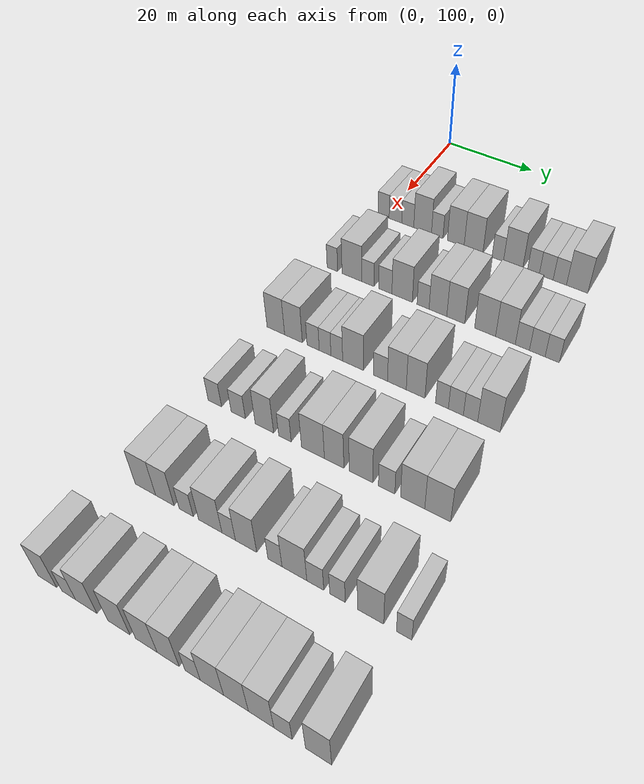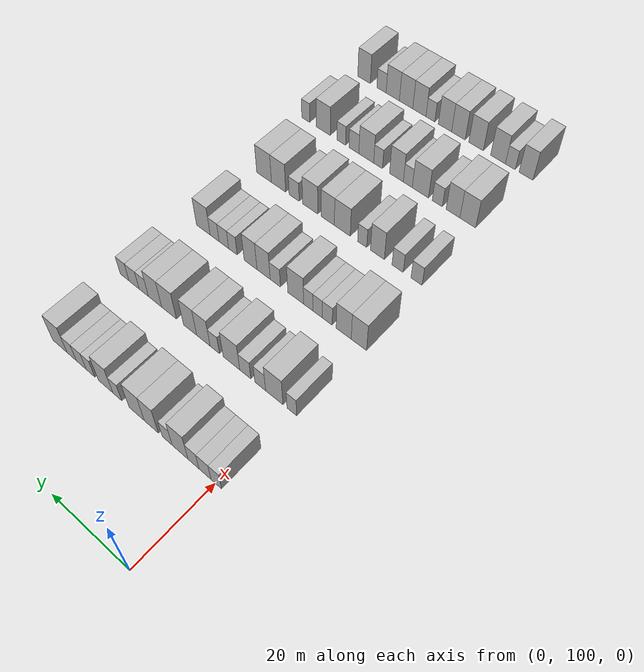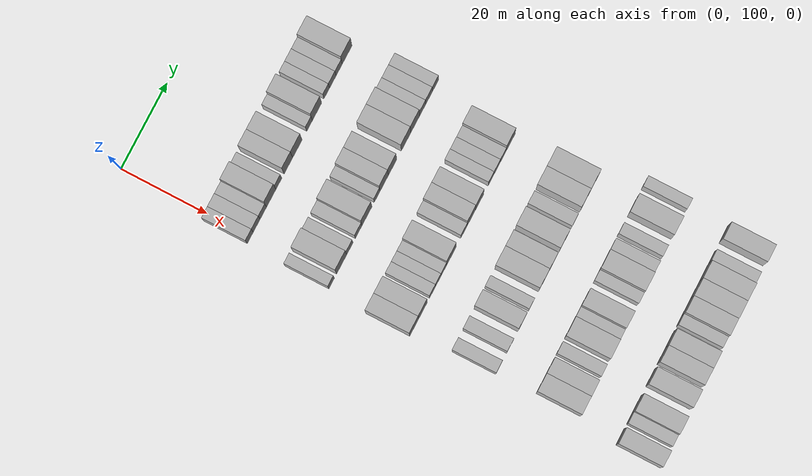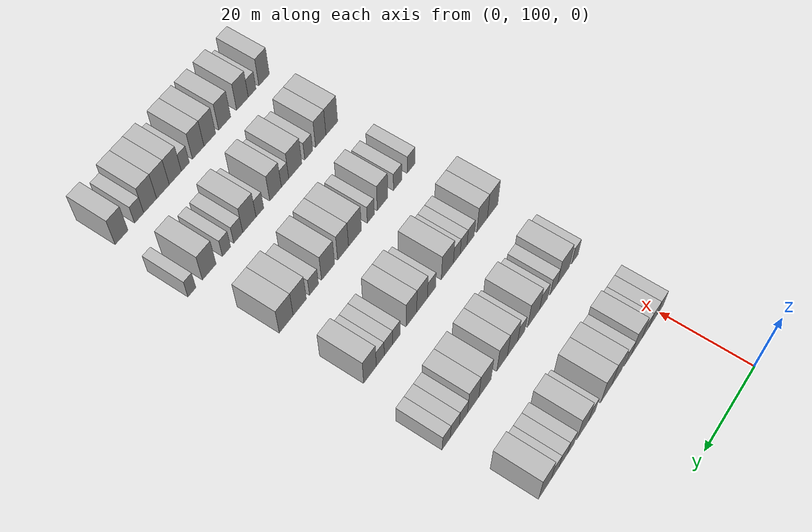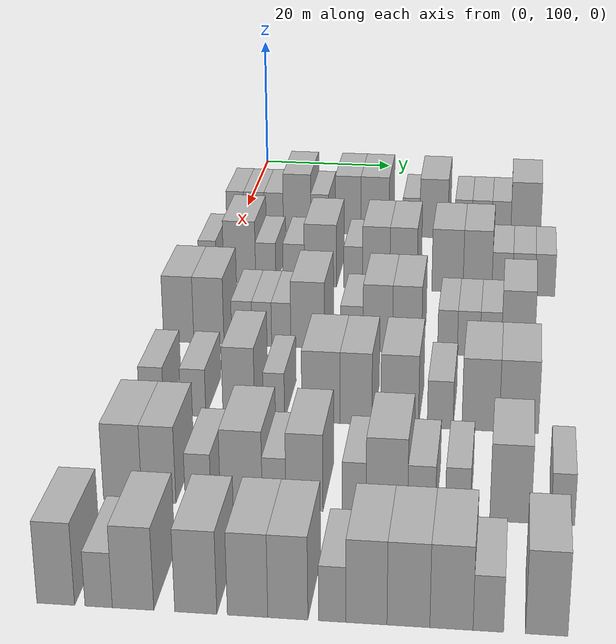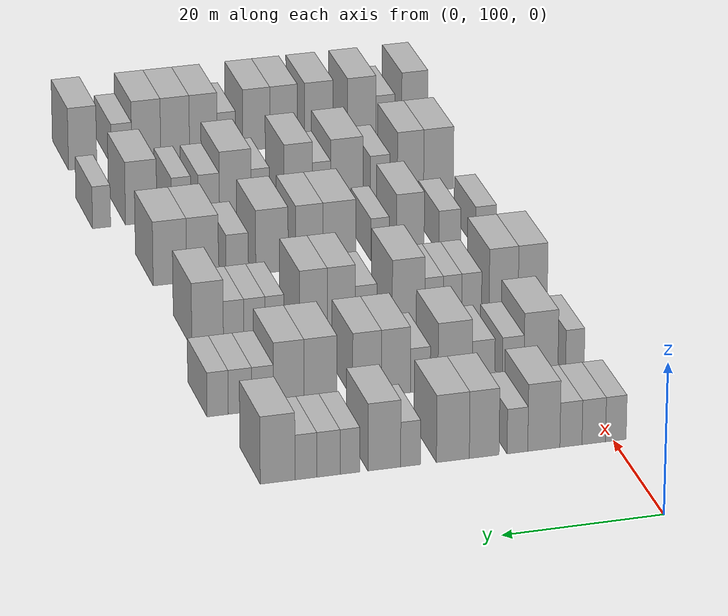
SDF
<sdf version="1.6">
 <world name="default">
  <model name="building_118">
   <static>1</static>
   <pose>25.0000 99.7150 0 0.000000 0.000000 0.000000</pose>
   <link name="link">
    <pose>0 0 3.00 0 0 0</pose>
    <collision name="collision"><geometry><box><size>10.0000 2.6151 6.0000</size></box></geometry></collision>
    <visual name="visual">
     <cast_shadows>0</cast_shadows>
     <geometry><box><size>10.0000 2.6151 6.0000</size></box></geometry>
     <material>
      <script>
       <uri>model://HANNAS_wall/materials/scripts</uri>
       <uri>model://HANNAS_wall/materials/textures</uri>
       <name>vrc/HANNAS_wall</name>
      </script>
     </material>
    </visual>
   </link>
  </model>
  <model name="building_119">
   <static>1</static>
   <pose>25.0000 102.5144 0 0.000000 0.000000 0.000000</pose>
   <link name="link">
    <pose>0 0 3.00 0 0 0</pose>
    <collision name="collision"><geometry><box><size>10.0000 2.9837 6.0000</size></box></geometry></collision>
    <visual name="visual">
     <cast_shadows>0</cast_shadows>
     <geometry><box><size>10.0000 2.9837 6.0000</size></box></geometry>
     <material>
      <script>
       <uri>model://HANNAS_wall/materials/scripts</uri>
       <uri>model://HANNAS_wall/materials/textures</uri>
       <name>vrc/HANNAS_wall</name>
      </script>
     </material>
    </visual>
   </link>
  </model>
  <model name="building_120">
   <static>1</static>
   <pose>25.0000 105.4059 0 0.000000 0.000000 0.000000</pose>
   <link name="link">
    <pose>0 0 3.00 0 0 0</pose>
    <collision name="collision"><geometry><box><size>10.0000 2.7993 6.0000</size></box></geometry></collision>
    <visual name="visual">
     <cast_shadows>0</cast_shadows>
     <geometry><box><size>10.0000 2.7993 6.0000</size></box></geometry>
     <material>
      <script>
       <uri>model://HANNAS_wall/materials/scripts</uri>
       <uri>model://HANNAS_wall/materials/textures</uri>
       <name>vrc/HANNAS_wall</name>
      </script>
     </material>
    </visual>
   </link>
  </model>
  <model name="building_121">
   <static>1</static>
   <pose>25.0000 108.8365 0 0.000000 0.000000 0.000000</pose>
   <link name="link">
    <pose>0 0 4.50 0 0 0</pose>
    <collision name="collision"><geometry><box><size>10.0000 4.0618 9.0000</size></box></geometry></collision>
    <visual name="visual">
     <cast_shadows>0</cast_shadows>
     <geometry><box><size>10.0000 4.0618 9.0000</size></box></geometry>
     <material>
      <script>
       <uri>model://HANNAS_wall/materials/scripts</uri>
       <uri>model://HANNAS_wall/materials/textures</uri>
       <name>vrc/HANNAS_wall</name>
      </script>
     </material>
    </visual>
   </link>
  </model>
  <model name="building_122">
   <static>1</static>
   <pose>25.0000 112.1730 0 0.000000 0.000000 0.000000</pose>
   <link name="link">
    <pose>0 0 3.00 0 0 0</pose>
    <collision name="collision"><geometry><box><size>10.0000 2.6110 6.0000</size></box></geometry></collision>
    <visual name="visual">
     <cast_shadows>0</cast_shadows>
     <geometry><box><size>10.0000 2.6110 6.0000</size></box></geometry>
     <material>
      <script>
       <uri>model://HANNAS_wall/materials/scripts</uri>
       <uri>model://HANNAS_wall/materials/textures</uri>
       <name>vrc/HANNAS_wall</name>
      </script>
     </material>
    </visual>
   </link>
  </model>
  <model name="building_123">
   <static>1</static>
   <pose>25.0000 116.3463 0 0.000000 0.000000 0.000000</pose>
   <link name="link">
    <pose>0 0 4.50 0 0 0</pose>
    <collision name="collision"><geometry><box><size>10.0000 3.7356 9.0000</size></box></geometry></collision>
    <visual name="visual">
     <cast_shadows>0</cast_shadows>
     <geometry><box><size>10.0000 3.7356 9.0000</size></box></geometry>
     <material>
      <script>
       <uri>model://HANNAS_wall/materials/scripts</uri>
       <uri>model://HANNAS_wall/materials/textures</uri>
       <name>vrc/HANNAS_wall</name>
      </script>
     </material>
    </visual>
   </link>
  </model>
  <model name="building_124">
   <static>1</static>
   <pose>25.0000 120.2760 0 0.000000 0.000000 0.000000</pose>
   <link name="link">
    <pose>0 0 4.50 0 0 0</pose>
    <collision name="collision"><geometry><box><size>10.0000 4.1238 9.0000</size></box></geometry></collision>
    <visual name="visual">
     <cast_shadows>0</cast_shadows>
     <geometry><box><size>10.0000 4.1238 9.0000</size></box></geometry>
     <material>
      <script>
       <uri>model://HANNAS_wall/materials/scripts</uri>
       <uri>model://HANNAS_wall/materials/textures</uri>
       <name>vrc/HANNAS_wall</name>
      </script>
     </material>
    </visual>
   </link>
  </model>
  <model name="building_125">
   <static>1</static>
   <pose>25.0000 125.5753 0 0.000000 0.000000 0.000000</pose>
   <link name="link">
    <pose>0 0 3.00 0 0 0</pose>
    <collision name="collision"><geometry><box><size>10.0000 2.4748 6.0000</size></box></geometry></collision>
    <visual name="visual">
     <cast_shadows>0</cast_shadows>
     <geometry><box><size>10.0000 2.4748 6.0000</size></box></geometry>
     <material>
      <script>
       <uri>model://HANNAS_wall/materials/scripts</uri>
       <uri>model://HANNAS_wall/materials/textures</uri>
       <name>vrc/HANNAS_wall</name>
      </script>
     </material>
    </visual>
   </link>
  </model>
  <model name="building_126">
   <static>1</static>
   <pose>25.0000 128.8518 0 0.000000 0.000000 0.000000</pose>
   <link name="link">
    <pose>0 0 4.50 0 0 0</pose>
    <collision name="collision"><geometry><box><size>10.0000 4.0783 9.0000</size></box></geometry></collision>
    <visual name="visual">
     <cast_shadows>0</cast_shadows>
     <geometry><box><size>10.0000 4.0783 9.0000</size></box></geometry>
     <material>
      <script>
       <uri>model://HANNAS_wall/materials/scripts</uri>
       <uri>model://HANNAS_wall/materials/textures</uri>
       <name>vrc/HANNAS_wall</name>
      </script>
     </material>
    </visual>
   </link>
  </model>
  <model name="building_127">
   <static>1</static>
   <pose>25.0000 133.1177 0 0.000000 0.000000 0.000000</pose>
   <link name="link">
    <pose>0 0 3.00 0 0 0</pose>
    <collision name="collision"><geometry><box><size>10.0000 2.4534 6.0000</size></box></geometry></collision>
    <visual name="visual">
     <cast_shadows>0</cast_shadows>
     <geometry><box><size>10.0000 2.4534 6.0000</size></box></geometry>
     <material>
      <script>
       <uri>model://HANNAS_wall/materials/scripts</uri>
       <uri>model://HANNAS_wall/materials/textures</uri>
       <name>vrc/HANNAS_wall</name>
      </script>
     </material>
    </visual>
   </link>
  </model>
  <model name="building_128">
   <static>1</static>
   <pose>25.0000 135.7824 0 0.000000 0.000000 0.000000</pose>
   <link name="link">
    <pose>0 0 3.00 0 0 0</pose>
    <collision name="collision"><geometry><box><size>10.0000 2.8760 6.0000</size></box></geometry></collision>
    <visual name="visual">
     <cast_shadows>0</cast_shadows>
     <geometry><box><size>10.0000 2.8760 6.0000</size></box></geometry>
     <material>
      <script>
       <uri>model://HANNAS_wall/materials/scripts</uri>
       <uri>model://HANNAS_wall/materials/textures</uri>
       <name>vrc/HANNAS_wall</name>
      </script>
     </material>
    </visual>
   </link>
  </model>
  <model name="building_129">
   <static>1</static>
   <pose>25.0000 138.5808 0 0.000000 0.000000 0.000000</pose>
   <link name="link">
    <pose>0 0 3.00 0 0 0</pose>
    <collision name="collision"><geometry><box><size>10.0000 2.7208 6.0000</size></box></geometry></collision>
    <visual name="visual">
     <cast_shadows>0</cast_shadows>
     <geometry><box><size>10.0000 2.7208 6.0000</size></box></geometry>
     <material>
      <script>
       <uri>model://HANNAS_wall/materials/scripts</uri>
       <uri>model://HANNAS_wall/materials/textures</uri>
       <name>vrc/HANNAS_wall</name>
      </script>
     </material>
    </visual>
   </link>
  </model>
  <model name="building_130">
   <static>1</static>
   <pose>25.0000 142.0863 0 0.000000 0.000000 0.000000</pose>
   <link name="link">
    <pose>0 0 4.50 0 0 0</pose>
    <collision name="collision"><geometry><box><size>10.0000 4.2900 9.0000</size></box></geometry></collision>
    <visual name="visual">
     <cast_shadows>0</cast_shadows>
     <geometry><box><size>10.0000 4.2900 9.0000</size></box></geometry>
     <material>
      <script>
       <uri>model://HANNAS_wall/materials/scripts</uri>
       <uri>model://HANNAS_wall/materials/textures</uri>
       <name>vrc/HANNAS_wall</name>
      </script>
     </material>
    </visual>
   </link>
  </model>
  <model name="building_287">
   <static>1</static>
   <pose>44.0000 99.0781 0 0.000000 0.000000 0.000000</pose>
   <link name="link">
    <pose>0 0 3.00 0 0 0</pose>
    <collision name="collision"><geometry><box><size>10.0000 2.4129 6.0000</size></box></geometry></collision>
    <visual name="visual">
     <cast_shadows>0</cast_shadows>
     <geometry><box><size>10.0000 2.4129 6.0000</size></box></geometry>
     <material>
      <script>
       <uri>model://HANNAS_wall/materials/scripts</uri>
       <uri>model://HANNAS_wall/materials/textures</uri>
       <name>vrc/HANNAS_wall</name>
      </script>
     </material>
    </visual>
   </link>
  </model>
  <model name="building_288">
   <static>1</static>
   <pose>44.0000 103.4817 0 0.000000 0.000000 0.000000</pose>
   <link name="link">
    <pose>0 0 4.50 0 0 0</pose>
    <collision name="collision"><geometry><box><size>10.0000 4.3942 9.0000</size></box></geometry></collision>
    <visual name="visual">
     <cast_shadows>0</cast_shadows>
     <geometry><box><size>10.0000 4.3942 9.0000</size></box></geometry>
     <material>
      <script>
       <uri>model://HANNAS_wall/materials/scripts</uri>
       <uri>model://HANNAS_wall/materials/textures</uri>
       <name>vrc/HANNAS_wall</name>
      </script>
     </material>
    </visual>
   </link>
  </model>
  <model name="building_289">
   <static>1</static>
   <pose>44.0000 107.0633 0 0.000000 0.000000 0.000000</pose>
   <link name="link">
    <pose>0 0 3.00 0 0 0</pose>
    <collision name="collision"><geometry><box><size>10.0000 2.7690 6.0000</size></box></geometry></collision>
    <visual name="visual">
     <cast_shadows>0</cast_shadows>
     <geometry><box><size>10.0000 2.7690 6.0000</size></box></geometry>
     <material>
      <script>
       <uri>model://HANNAS_wall/materials/scripts</uri>
       <uri>model://HANNAS_wall/materials/textures</uri>
       <name>vrc/HANNAS_wall</name>
      </script>
     </material>
    </visual>
   </link>
  </model>
  <model name="building_290">
   <static>1</static>
   <pose>44.0000 110.9023 0 0.000000 0.000000 0.000000</pose>
   <link name="link">
    <pose>0 0 3.00 0 0 0</pose>
    <collision name="collision"><geometry><box><size>10.0000 2.9089 6.0000</size></box></geometry></collision>
    <visual name="visual">
     <cast_shadows>0</cast_shadows>
     <geometry><box><size>10.0000 2.9089 6.0000</size></box></geometry>
     <material>
      <script>
       <uri>model://HANNAS_wall/materials/scripts</uri>
       <uri>model://HANNAS_wall/materials/textures</uri>
       <name>vrc/HANNAS_wall</name>
      </script>
     </material>
    </visual>
   </link>
  </model>
  <model name="building_291">
   <static>1</static>
   <pose>44.0000 114.5514 0 0.000000 0.000000 0.000000</pose>
   <link name="link">
    <pose>0 0 4.50 0 0 0</pose>
    <collision name="collision"><geometry><box><size>10.0000 4.3893 9.0000</size></box></geometry></collision>
    <visual name="visual">
     <cast_shadows>0</cast_shadows>
     <geometry><box><size>10.0000 4.3893 9.0000</size></box></geometry>
     <material>
      <script>
       <uri>model://HANNAS_wall/materials/scripts</uri>
       <uri>model://HANNAS_wall/materials/textures</uri>
       <name>vrc/HANNAS_wall</name>
      </script>
     </material>
    </visual>
   </link>
  </model>
  <model name="building_292">
   <static>1</static>
   <pose>44.0000 119.0161 0 0.000000 0.000000 0.000000</pose>
   <link name="link">
    <pose>0 0 3.00 0 0 0</pose>
    <collision name="collision"><geometry><box><size>10.0000 2.5402 6.0000</size></box></geometry></collision>
    <visual name="visual">
     <cast_shadows>0</cast_shadows>
     <geometry><box><size>10.0000 2.5402 6.0000</size></box></geometry>
     <material>
      <script>
       <uri>model://HANNAS_wall/materials/scripts</uri>
       <uri>model://HANNAS_wall/materials/textures</uri>
       <name>vrc/HANNAS_wall</name>
      </script>
     </material>
    </visual>
   </link>
  </model>
  <model name="building_293">
   <static>1</static>
   <pose>44.0000 122.1295 0 0.000000 0.000000 0.000000</pose>
   <link name="link">
    <pose>0 0 4.50 0 0 0</pose>
    <collision name="collision"><geometry><box><size>10.0000 3.6866 9.0000</size></box></geometry></collision>
    <visual name="visual">
     <cast_shadows>0</cast_shadows>
     <geometry><box><size>10.0000 3.6866 9.0000</size></box></geometry>
     <material>
      <script>
       <uri>model://HANNAS_wall/materials/scripts</uri>
       <uri>model://HANNAS_wall/materials/textures</uri>
       <name>vrc/HANNAS_wall</name>
      </script>
     </material>
    </visual>
   </link>
  </model>
  <model name="building_294">
   <static>1</static>
   <pose>44.0000 125.8100 0 0.000000 0.000000 0.000000</pose>
   <link name="link">
    <pose>0 0 4.50 0 0 0</pose>
    <collision name="collision"><geometry><box><size>10.0000 3.6745 9.0000</size></box></geometry></collision>
    <visual name="visual">
     <cast_shadows>0</cast_shadows>
     <geometry><box><size>10.0000 3.6745 9.0000</size></box></geometry>
     <material>
      <script>
       <uri>model://HANNAS_wall/materials/scripts</uri>
       <uri>model://HANNAS_wall/materials/textures</uri>
       <name>vrc/HANNAS_wall</name>
      </script>
     </material>
    </visual>
   </link>
  </model>
  <model name="building_295">
   <static>1</static>
   <pose>44.0000 131.7465 0 0.000000 0.000000 0.000000</pose>
   <link name="link">
    <pose>0 0 4.50 0 0 0</pose>
    <collision name="collision"><geometry><box><size>10.0000 4.1984 9.0000</size></box></geometry></collision>
    <visual name="visual">
     <cast_shadows>0</cast_shadows>
     <geometry><box><size>10.0000 4.1984 9.0000</size></box></geometry>
     <material>
      <script>
       <uri>model://HANNAS_wall/materials/scripts</uri>
       <uri>model://HANNAS_wall/materials/textures</uri>
       <name>vrc/HANNAS_wall</name>
      </script>
     </material>
    </visual>
   </link>
  </model>
  <model name="building_296">
   <static>1</static>
   <pose>44.0000 135.7766 0 0.000000 0.000000 0.000000</pose>
   <link name="link">
    <pose>0 0 4.50 0 0 0</pose>
    <collision name="collision"><geometry><box><size>10.0000 3.8619 9.0000</size></box></geometry></collision>
    <visual name="visual">
     <cast_shadows>0</cast_shadows>
     <geometry><box><size>10.0000 3.8619 9.0000</size></box></geometry>
     <material>
      <script>
       <uri>model://HANNAS_wall/materials/scripts</uri>
       <uri>model://HANNAS_wall/materials/textures</uri>
       <name>vrc/HANNAS_wall</name>
      </script>
     </material>
    </visual>
   </link>
  </model>
  <model name="building_297">
   <static>1</static>
   <pose>44.0000 139.0751 0 0.000000 0.000000 0.000000</pose>
   <link name="link">
    <pose>0 0 3.00 0 0 0</pose>
    <collision name="collision"><geometry><box><size>10.0000 2.7350 6.0000</size></box></geometry></collision>
    <visual name="visual">
     <cast_shadows>0</cast_shadows>
     <geometry><box><size>10.0000 2.7350 6.0000</size></box></geometry>
     <material>
      <script>
       <uri>model://HANNAS_wall/materials/scripts</uri>
       <uri>model://HANNAS_wall/materials/textures</uri>
       <name>vrc/HANNAS_wall</name>
      </script>
     </material>
    </visual>
   </link>
  </model>
  <model name="building_298">
   <static>1</static>
   <pose>44.0000 141.9345 0 0.000000 0.000000 0.000000</pose>
   <link name="link">
    <pose>0 0 3.00 0 0 0</pose>
    <collision name="collision"><geometry><box><size>10.0000 2.9839 6.0000</size></box></geometry></collision>
    <visual name="visual">
     <cast_shadows>0</cast_shadows>
     <geometry><box><size>10.0000 2.9839 6.0000</size></box></geometry>
     <material>
      <script>
       <uri>model://HANNAS_wall/materials/scripts</uri>
       <uri>model://HANNAS_wall/materials/textures</uri>
       <name>vrc/HANNAS_wall</name>
      </script>
     </material>
    </visual>
   </link>
  </model>
  <model name="building_299">
   <static>1</static>
   <pose>44.0000 144.7667 0 0.000000 0.000000 0.000000</pose>
   <link name="link">
    <pose>0 0 3.00 0 0 0</pose>
    <collision name="collision"><geometry><box><size>10.0000 2.6804 6.0000</size></box></geometry></collision>
    <visual name="visual">
     <cast_shadows>0</cast_shadows>
     <geometry><box><size>10.0000 2.6804 6.0000</size></box></geometry>
     <material>
      <script>
       <uri>model://HANNAS_wall/materials/scripts</uri>
       <uri>model://HANNAS_wall/materials/textures</uri>
       <name>vrc/HANNAS_wall</name>
      </script>
     </material>
    </visual>
   </link>
  </model>
  <model name="building_453">
   <static>1</static>
   <pose>63.0000 98.8416 0 0.000000 0.000000 0.000000</pose>
   <link name="link">
    <pose>0 0 4.50 0 0 0</pose>
    <collision name="collision"><geometry><box><size>10.0000 3.8554 9.0000</size></box></geometry></collision>
    <visual name="visual">
     <cast_shadows>0</cast_shadows>
     <geometry><box><size>10.0000 3.8554 9.0000</size></box></geometry>
     <material>
      <script>
       <uri>model://HANNAS_wall/materials/scripts</uri>
       <uri>model://HANNAS_wall/materials/textures</uri>
       <name>vrc/HANNAS_wall</name>
      </script>
     </material>
    </visual>
   </link>
  </model>
  <model name="building_454">
   <static>1</static>
   <pose>63.0000 102.6902 0 0.000000 0.000000 0.000000</pose>
   <link name="link">
    <pose>0 0 4.50 0 0 0</pose>
    <collision name="collision"><geometry><box><size>10.0000 3.8419 9.0000</size></box></geometry></collision>
    <visual name="visual">
     <cast_shadows>0</cast_shadows>
     <geometry><box><size>10.0000 3.8419 9.0000</size></box></geometry>
     <material>
      <script>
       <uri>model://HANNAS_wall/materials/scripts</uri>
       <uri>model://HANNAS_wall/materials/textures</uri>
       <name>vrc/HANNAS_wall</name>
      </script>
     </material>
    </visual>
   </link>
  </model>
  <model name="building_455">
   <static>1</static>
   <pose>63.0000 106.9093 0 0.000000 0.000000 0.000000</pose>
   <link name="link">
    <pose>0 0 3.00 0 0 0</pose>
    <collision name="collision"><geometry><box><size>10.0000 2.5963 6.0000</size></box></geometry></collision>
    <visual name="visual">
     <cast_shadows>0</cast_shadows>
     <geometry><box><size>10.0000 2.5963 6.0000</size></box></geometry>
     <material>
      <script>
       <uri>model://HANNAS_wall/materials/scripts</uri>
       <uri>model://HANNAS_wall/materials/textures</uri>
       <name>vrc/HANNAS_wall</name>
      </script>
     </material>
    </visual>
   </link>
  </model>
  <model name="building_456">
   <static>1</static>
   <pose>63.0000 109.4346 0 0.000000 0.000000 0.000000</pose>
   <link name="link">
    <pose>0 0 3.00 0 0 0</pose>
    <collision name="collision"><geometry><box><size>10.0000 2.4544 6.0000</size></box></geometry></collision>
    <visual name="visual">
     <cast_shadows>0</cast_shadows>
     <geometry><box><size>10.0000 2.4544 6.0000</size></box></geometry>
     <material>
      <script>
       <uri>model://HANNAS_wall/materials/scripts</uri>
       <uri>model://HANNAS_wall/materials/textures</uri>
       <name>vrc/HANNAS_wall</name>
      </script>
     </material>
    </visual>
   </link>
  </model>
  <model name="building_457">
   <static>1</static>
   <pose>63.0000 111.8784 0 0.000000 0.000000 0.000000</pose>
   <link name="link">
    <pose>0 0 3.00 0 0 0</pose>
    <collision name="collision"><geometry><box><size>10.0000 2.4333 6.0000</size></box></geometry></collision>
    <visual name="visual">
     <cast_shadows>0</cast_shadows>
     <geometry><box><size>10.0000 2.4333 6.0000</size></box></geometry>
     <material>
      <script>
       <uri>model://HANNAS_wall/materials/scripts</uri>
       <uri>model://HANNAS_wall/materials/textures</uri>
       <name>vrc/HANNAS_wall</name>
      </script>
     </material>
    </visual>
   </link>
  </model>
  <model name="building_458">
   <static>1</static>
   <pose>63.0000 115.2215 0 0.000000 0.000000 0.000000</pose>
   <link name="link">
    <pose>0 0 4.50 0 0 0</pose>
    <collision name="collision"><geometry><box><size>10.0000 4.2529 9.0000</size></box></geometry></collision>
    <visual name="visual">
     <cast_shadows>0</cast_shadows>
     <geometry><box><size>10.0000 4.2529 9.0000</size></box></geometry>
     <material>
      <script>
       <uri>model://HANNAS_wall/materials/scripts</uri>
       <uri>model://HANNAS_wall/materials/textures</uri>
       <name>vrc/HANNAS_wall</name>
      </script>
     </material>
    </visual>
   </link>
  </model>
  <model name="building_459">
   <static>1</static>
   <pose>63.0000 120.7605 0 0.000000 0.000000 0.000000</pose>
   <link name="link">
    <pose>0 0 3.00 0 0 0</pose>
    <collision name="collision"><geometry><box><size>10.0000 2.8251 6.0000</size></box></geometry></collision>
    <visual name="visual">
     <cast_shadows>0</cast_shadows>
     <geometry><box><size>10.0000 2.8251 6.0000</size></box></geometry>
     <material>
      <script>
       <uri>model://HANNAS_wall/materials/scripts</uri>
       <uri>model://HANNAS_wall/materials/textures</uri>
       <name>vrc/HANNAS_wall</name>
      </script>
     </material>
    </visual>
   </link>
  </model>
  <model name="building_460">
   <static>1</static>
   <pose>63.0000 124.0104 0 0.000000 0.000000 0.000000</pose>
   <link name="link">
    <pose>0 0 4.50 0 0 0</pose>
    <collision name="collision"><geometry><box><size>10.0000 3.6748 9.0000</size></box></geometry></collision>
    <visual name="visual">
     <cast_shadows>0</cast_shadows>
     <geometry><box><size>10.0000 3.6748 9.0000</size></box></geometry>
     <material>
      <script>
       <uri>model://HANNAS_wall/materials/scripts</uri>
       <uri>model://HANNAS_wall/materials/textures</uri>
       <name>vrc/HANNAS_wall</name>
      </script>
     </material>
    </visual>
   </link>
  </model>
  <model name="building_461">
   <static>1</static>
   <pose>63.0000 127.6533 0 0.000000 0.000000 0.000000</pose>
   <link name="link">
    <pose>0 0 4.50 0 0 0</pose>
    <collision name="collision"><geometry><box><size>10.0000 3.6110 9.0000</size></box></geometry></collision>
    <visual name="visual">
     <cast_shadows>0</cast_shadows>
     <geometry><box><size>10.0000 3.6110 9.0000</size></box></geometry>
     <material>
      <script>
       <uri>model://HANNAS_wall/materials/scripts</uri>
       <uri>model://HANNAS_wall/materials/textures</uri>
       <name>vrc/HANNAS_wall</name>
      </script>
     </material>
    </visual>
   </link>
  </model>
  <model name="building_462">
   <static>1</static>
   <pose>63.0000 132.6782 0 0.000000 0.000000 0.000000</pose>
   <link name="link">
    <pose>0 0 3.00 0 0 0</pose>
    <collision name="collision"><geometry><box><size>10.0000 2.4390 6.0000</size></box></geometry></collision>
    <visual name="visual">
     <cast_shadows>0</cast_shadows>
     <geometry><box><size>10.0000 2.4390 6.0000</size></box></geometry>
     <material>
      <script>
       <uri>model://HANNAS_wall/materials/scripts</uri>
       <uri>model://HANNAS_wall/materials/textures</uri>
       <name>vrc/HANNAS_wall</name>
      </script>
     </material>
    </visual>
   </link>
  </model>
  <model name="building_463">
   <static>1</static>
   <pose>63.0000 135.2928 0 0.000000 0.000000 0.000000</pose>
   <link name="link">
    <pose>0 0 3.00 0 0 0</pose>
    <collision name="collision"><geometry><box><size>10.0000 2.7902 6.0000</size></box></geometry></collision>
    <visual name="visual">
     <cast_shadows>0</cast_shadows>
     <geometry><box><size>10.0000 2.7902 6.0000</size></box></geometry>
     <material>
      <script>
       <uri>model://HANNAS_wall/materials/scripts</uri>
       <uri>model://HANNAS_wall/materials/textures</uri>
       <name>vrc/HANNAS_wall</name>
      </script>
     </material>
    </visual>
   </link>
  </model>
  <model name="building_464">
   <static>1</static>
   <pose>63.0000 138.0044 0 0.000000 0.000000 0.000000</pose>
   <link name="link">
    <pose>0 0 3.00 0 0 0</pose>
    <collision name="collision"><geometry><box><size>10.0000 2.6330 6.0000</size></box></geometry></collision>
    <visual name="visual">
     <cast_shadows>0</cast_shadows>
     <geometry><box><size>10.0000 2.6330 6.0000</size></box></geometry>
     <material>
      <script>
       <uri>model://HANNAS_wall/materials/scripts</uri>
       <uri>model://HANNAS_wall/materials/textures</uri>
       <name>vrc/HANNAS_wall</name>
      </script>
     </material>
    </visual>
   </link>
  </model>
  <model name="building_465">
   <static>1</static>
   <pose>63.0000 141.3569 0 0.000000 0.000000 0.000000</pose>
   <link name="link">
    <pose>0 0 4.50 0 0 0</pose>
    <collision name="collision"><geometry><box><size>10.0000 4.0720 9.0000</size></box></geometry></collision>
    <visual name="visual">
     <cast_shadows>0</cast_shadows>
     <geometry><box><size>10.0000 4.0720 9.0000</size></box></geometry>
     <material>
      <script>
       <uri>model://HANNAS_wall/materials/scripts</uri>
       <uri>model://HANNAS_wall/materials/textures</uri>
       <name>vrc/HANNAS_wall</name>
      </script>
     </material>
    </visual>
   </link>
  </model>
  <model name="building_617">
   <static>1</static>
   <pose>82.0000 99.4771 0 0.000000 0.000000 0.000000</pose>
   <link name="link">
    <pose>0 0 3.00 0 0 0</pose>
    <collision name="collision"><geometry><box><size>10.0000 2.8223 6.0000</size></box></geometry></collision>
    <visual name="visual">
     <cast_shadows>0</cast_shadows>
     <geometry><box><size>10.0000 2.8223 6.0000</size></box></geometry>
     <material>
      <script>
       <uri>model://HANNAS_wall/materials/scripts</uri>
       <uri>model://HANNAS_wall/materials/textures</uri>
       <name>vrc/HANNAS_wall</name>
      </script>
     </material>
    </visual>
   </link>
  </model>
  <model name="building_618">
   <static>1</static>
   <pose>82.0000 104.3501 0 0.000000 0.000000 0.000000</pose>
   <link name="link">
    <pose>0 0 3.00 0 0 0</pose>
    <collision name="collision"><geometry><box><size>10.0000 2.9237 6.0000</size></box></geometry></collision>
    <visual name="visual">
     <cast_shadows>0</cast_shadows>
     <geometry><box><size>10.0000 2.9237 6.0000</size></box></geometry>
     <material>
      <script>
       <uri>model://HANNAS_wall/materials/scripts</uri>
       <uri>model://HANNAS_wall/materials/textures</uri>
       <name>vrc/HANNAS_wall</name>
      </script>
     </material>
    </visual>
   </link>
  </model>
  <model name="building_619">
   <static>1</static>
   <pose>82.0000 109.6593 0 0.000000 0.000000 0.000000</pose>
   <link name="link">
    <pose>0 0 4.50 0 0 0</pose>
    <collision name="collision"><geometry><box><size>10.0000 3.6948 9.0000</size></box></geometry></collision>
    <visual name="visual">
     <cast_shadows>0</cast_shadows>
     <geometry><box><size>10.0000 3.6948 9.0000</size></box></geometry>
     <material>
      <script>
       <uri>model://HANNAS_wall/materials/scripts</uri>
       <uri>model://HANNAS_wall/materials/textures</uri>
       <name>vrc/HANNAS_wall</name>
      </script>
     </material>
    </visual>
   </link>
  </model>
  <model name="building_620">
   <static>1</static>
   <pose>82.0000 113.7316 0 0.000000 0.000000 0.000000</pose>
   <link name="link">
    <pose>0 0 3.00 0 0 0</pose>
    <collision name="collision"><geometry><box><size>10.0000 2.4498 6.0000</size></box></geometry></collision>
    <visual name="visual">
     <cast_shadows>0</cast_shadows>
     <geometry><box><size>10.0000 2.4498 6.0000</size></box></geometry>
     <material>
      <script>
       <uri>model://HANNAS_wall/materials/scripts</uri>
       <uri>model://HANNAS_wall/materials/textures</uri>
       <name>vrc/HANNAS_wall</name>
      </script>
     </material>
    </visual>
   </link>
  </model>
  <model name="building_621">
   <static>1</static>
   <pose>82.0000 119.1521 0 0.000000 0.000000 0.000000</pose>
   <link name="link">
    <pose>0 0 4.50 0 0 0</pose>
    <collision name="collision"><geometry><box><size>10.0000 4.3912 9.0000</size></box></geometry></collision>
    <visual name="visual">
     <cast_shadows>0</cast_shadows>
     <geometry><box><size>10.0000 4.3912 9.0000</size></box></geometry>
     <material>
      <script>
       <uri>model://HANNAS_wall/materials/scripts</uri>
       <uri>model://HANNAS_wall/materials/textures</uri>
       <name>vrc/HANNAS_wall</name>
      </script>
     </material>
    </visual>
   </link>
  </model>
  <model name="building_622">
   <static>1</static>
   <pose>82.0000 123.1748 0 0.000000 0.000000 0.000000</pose>
   <link name="link">
    <pose>0 0 4.50 0 0 0</pose>
    <collision name="collision"><geometry><box><size>10.0000 3.6542 9.0000</size></box></geometry></collision>
    <visual name="visual">
     <cast_shadows>0</cast_shadows>
     <geometry><box><size>10.0000 3.6542 9.0000</size></box></geometry>
     <material>
      <script>
       <uri>model://HANNAS_wall/materials/scripts</uri>
       <uri>model://HANNAS_wall/materials/textures</uri>
       <name>vrc/HANNAS_wall</name>
      </script>
     </material>
    </visual>
   </link>
  </model>
  <model name="building_623">
   <static>1</static>
   <pose>82.0000 128.1564 0 0.000000 0.000000 0.000000</pose>
   <link name="link">
    <pose>0 0 4.50 0 0 0</pose>
    <collision name="collision"><geometry><box><size>10.0000 4.3091 9.0000</size></box></geometry></collision>
    <visual name="visual">
     <cast_shadows>0</cast_shadows>
     <geometry><box><size>10.0000 4.3091 9.0000</size></box></geometry>
     <material>
      <script>
       <uri>model://HANNAS_wall/materials/scripts</uri>
       <uri>model://HANNAS_wall/materials/textures</uri>
       <name>vrc/HANNAS_wall</name>
      </script>
     </material>
    </visual>
   </link>
  </model>
  <model name="building_624">
   <static>1</static>
   <pose>82.0000 132.7762 0 0.000000 0.000000 0.000000</pose>
   <link name="link">
    <pose>0 0 3.00 0 0 0</pose>
    <collision name="collision"><geometry><box><size>10.0000 2.9305 6.0000</size></box></geometry></collision>
    <visual name="visual">
     <cast_shadows>0</cast_shadows>
     <geometry><box><size>10.0000 2.9305 6.0000</size></box></geometry>
     <material>
      <script>
       <uri>model://HANNAS_wall/materials/scripts</uri>
       <uri>model://HANNAS_wall/materials/textures</uri>
       <name>vrc/HANNAS_wall</name>
      </script>
     </material>
    </visual>
   </link>
  </model>
  <model name="building_625">
   <static>1</static>
   <pose>82.0000 137.3508 0 0.000000 0.000000 0.000000</pose>
   <link name="link">
    <pose>0 0 4.50 0 0 0</pose>
    <collision name="collision"><geometry><box><size>10.0000 4.2188 9.0000</size></box></geometry></collision>
    <visual name="visual">
     <cast_shadows>0</cast_shadows>
     <geometry><box><size>10.0000 4.2188 9.0000</size></box></geometry>
     <material>
      <script>
       <uri>model://HANNAS_wall/materials/scripts</uri>
       <uri>model://HANNAS_wall/materials/textures</uri>
       <name>vrc/HANNAS_wall</name>
      </script>
     </material>
    </visual>
   </link>
  </model>
  <model name="building_626">
   <static>1</static>
   <pose>82.0000 141.6669 0 0.000000 0.000000 0.000000</pose>
   <link name="link">
    <pose>0 0 4.50 0 0 0</pose>
    <collision name="collision"><geometry><box><size>10.0000 4.4134 9.0000</size></box></geometry></collision>
    <visual name="visual">
     <cast_shadows>0</cast_shadows>
     <geometry><box><size>10.0000 4.4134 9.0000</size></box></geometry>
     <material>
      <script>
       <uri>model://HANNAS_wall/materials/scripts</uri>
       <uri>model://HANNAS_wall/materials/textures</uri>
       <name>vrc/HANNAS_wall</name>
      </script>
     </material>
    </visual>
   </link>
  </model>
  <model name="building_782">
   <static>1</static>
   <pose>101.0000 100.4694 0 0.000000 0.000000 0.000000</pose>
   <link name="link">
    <pose>0 0 4.50 0 0 0</pose>
    <collision name="collision"><geometry><box><size>10.0000 4.1056 9.0000</size></box></geometry></collision>
    <visual name="visual">
     <cast_shadows>0</cast_shadows>
     <geometry><box><size>10.0000 4.1056 9.0000</size></box></geometry>
     <material>
      <script>
       <uri>model://HANNAS_wall/materials/scripts</uri>
       <uri>model://HANNAS_wall/materials/textures</uri>
       <name>vrc/HANNAS_wall</name>
      </script>
     </material>
    </visual>
   </link>
  </model>
  <model name="building_783">
   <static>1</static>
   <pose>101.0000 104.3315 0 0.000000 0.000000 0.000000</pose>
   <link name="link">
    <pose>0 0 4.50 0 0 0</pose>
    <collision name="collision"><geometry><box><size>10.0000 3.6187 9.0000</size></box></geometry></collision>
    <visual name="visual">
     <cast_shadows>0</cast_shadows>
     <geometry><box><size>10.0000 3.6187 9.0000</size></box></geometry>
     <material>
      <script>
       <uri>model://HANNAS_wall/materials/scripts</uri>
       <uri>model://HANNAS_wall/materials/textures</uri>
       <name>vrc/HANNAS_wall</name>
      </script>
     </material>
    </visual>
   </link>
  </model>
  <model name="building_784">
   <static>1</static>
   <pose>101.0000 108.5048 0 0.000000 0.000000 0.000000</pose>
   <link name="link">
    <pose>0 0 3.00 0 0 0</pose>
    <collision name="collision"><geometry><box><size>10.0000 2.7278 6.0000</size></box></geometry></collision>
    <visual name="visual">
     <cast_shadows>0</cast_shadows>
     <geometry><box><size>10.0000 2.7278 6.0000</size></box></geometry>
     <material>
      <script>
       <uri>model://HANNAS_wall/materials/scripts</uri>
       <uri>model://HANNAS_wall/materials/textures</uri>
       <name>vrc/HANNAS_wall</name>
      </script>
     </material>
    </visual>
   </link>
  </model>
  <model name="building_785">
   <static>1</static>
   <pose>101.0000 113.0750 0 0.000000 0.000000 0.000000</pose>
   <link name="link">
    <pose>0 0 4.50 0 0 0</pose>
    <collision name="collision"><geometry><box><size>10.0000 4.4128 9.0000</size></box></geometry></collision>
    <visual name="visual">
     <cast_shadows>0</cast_shadows>
     <geometry><box><size>10.0000 4.4128 9.0000</size></box></geometry>
     <material>
      <script>
       <uri>model://HANNAS_wall/materials/scripts</uri>
       <uri>model://HANNAS_wall/materials/textures</uri>
       <name>vrc/HANNAS_wall</name>
      </script>
     </material>
    </visual>
   </link>
  </model>
  <model name="building_786">
   <static>1</static>
   <pose>101.0000 116.5224 0 0.000000 0.000000 0.000000</pose>
   <link name="link">
    <pose>0 0 3.00 0 0 0</pose>
    <collision name="collision"><geometry><box><size>10.0000 2.4818 6.0000</size></box></geometry></collision>
    <visual name="visual">
     <cast_shadows>0</cast_shadows>
     <geometry><box><size>10.0000 2.4818 6.0000</size></box></geometry>
     <material>
      <script>
       <uri>model://HANNAS_wall/materials/scripts</uri>
       <uri>model://HANNAS_wall/materials/textures</uri>
       <name>vrc/HANNAS_wall</name>
      </script>
     </material>
    </visual>
   </link>
  </model>
  <model name="building_787">
   <static>1</static>
   <pose>101.0000 119.6951 0 0.000000 0.000000 0.000000</pose>
   <link name="link">
    <pose>0 0 4.50 0 0 0</pose>
    <collision name="collision"><geometry><box><size>10.0000 3.8636 9.0000</size></box></geometry></collision>
    <visual name="visual">
     <cast_shadows>0</cast_shadows>
     <geometry><box><size>10.0000 3.8636 9.0000</size></box></geometry>
     <material>
      <script>
       <uri>model://HANNAS_wall/materials/scripts</uri>
       <uri>model://HANNAS_wall/materials/textures</uri>
       <name>vrc/HANNAS_wall</name>
      </script>
     </material>
    </visual>
   </link>
  </model>
  <model name="building_788">
   <static>1</static>
   <pose>101.0000 124.8749 0 0.000000 0.000000 0.000000</pose>
   <link name="link">
    <pose>0 0 3.00 0 0 0</pose>
    <collision name="collision"><geometry><box><size>10.0000 2.4960 6.0000</size></box></geometry></collision>
    <visual name="visual">
     <cast_shadows>0</cast_shadows>
     <geometry><box><size>10.0000 2.4960 6.0000</size></box></geometry>
     <material>
      <script>
       <uri>model://HANNAS_wall/materials/scripts</uri>
       <uri>model://HANNAS_wall/materials/textures</uri>
       <name>vrc/HANNAS_wall</name>
      </script>
     </material>
    </visual>
   </link>
  </model>
  <model name="building_789">
   <static>1</static>
   <pose>101.0000 128.2689 0 0.000000 0.000000 0.000000</pose>
   <link name="link">
    <pose>0 0 4.50 0 0 0</pose>
    <collision name="collision"><geometry><box><size>10.0000 4.2919 9.0000</size></box></geometry></collision>
    <visual name="visual">
     <cast_shadows>0</cast_shadows>
     <geometry><box><size>10.0000 4.2919 9.0000</size></box></geometry>
     <material>
      <script>
       <uri>model://HANNAS_wall/materials/scripts</uri>
       <uri>model://HANNAS_wall/materials/textures</uri>
       <name>vrc/HANNAS_wall</name>
      </script>
     </material>
    </visual>
   </link>
  </model>
  <model name="building_790">
   <static>1</static>
   <pose>101.0000 131.8526 0 0.000000 0.000000 0.000000</pose>
   <link name="link">
    <pose>0 0 3.00 0 0 0</pose>
    <collision name="collision"><geometry><box><size>10.0000 2.8755 6.0000</size></box></geometry></collision>
    <visual name="visual">
     <cast_shadows>0</cast_shadows>
     <geometry><box><size>10.0000 2.8755 6.0000</size></box></geometry>
     <material>
      <script>
       <uri>model://HANNAS_wall/materials/scripts</uri>
       <uri>model://HANNAS_wall/materials/textures</uri>
       <name>vrc/HANNAS_wall</name>
      </script>
     </material>
    </visual>
   </link>
  </model>
  <model name="building_791">
   <static>1</static>
   <pose>101.0000 135.5792 0 0.000000 0.000000 0.000000</pose>
   <link name="link">
    <pose>0 0 3.00 0 0 0</pose>
    <collision name="collision"><geometry><box><size>10.0000 2.5778 6.0000</size></box></geometry></collision>
    <visual name="visual">
     <cast_shadows>0</cast_shadows>
     <geometry><box><size>10.0000 2.5778 6.0000</size></box></geometry>
     <material>
      <script>
       <uri>model://HANNAS_wall/materials/scripts</uri>
       <uri>model://HANNAS_wall/materials/textures</uri>
       <name>vrc/HANNAS_wall</name>
      </script>
     </material>
    </visual>
   </link>
  </model>
  <model name="building_792">
   <static>1</static>
   <pose>101.0000 140.9826 0 0.000000 0.000000 0.000000</pose>
   <link name="link">
    <pose>0 0 4.50 0 0 0</pose>
    <collision name="collision"><geometry><box><size>10.0000 4.2291 9.0000</size></box></geometry></collision>
    <visual name="visual">
     <cast_shadows>0</cast_shadows>
     <geometry><box><size>10.0000 4.2291 9.0000</size></box></geometry>
     <material>
      <script>
       <uri>model://HANNAS_wall/materials/scripts</uri>
       <uri>model://HANNAS_wall/materials/textures</uri>
       <name>vrc/HANNAS_wall</name>
      </script>
     </material>
    </visual>
   </link>
  </model>
  <model name="building_793">
   <static>1</static>
   <pose>101.0000 146.3094 0 0.000000 0.000000 0.000000</pose>
   <link name="link">
    <pose>0 0 3.00 0 0 0</pose>
    <collision name="collision"><geometry><box><size>10.0000 2.4244 6.0000</size></box></geometry></collision>
    <visual name="visual">
     <cast_shadows>0</cast_shadows>
     <geometry><box><size>10.0000 2.4244 6.0000</size></box></geometry>
     <material>
      <script>
       <uri>model://HANNAS_wall/materials/scripts</uri>
       <uri>model://HANNAS_wall/materials/textures</uri>
       <name>vrc/HANNAS_wall</name>
      </script>
     </material>
    </visual>
   </link>
  </model>
  <model name="building_961">
   <static>1</static>
   <pose>120.0000 98.4335 0 0.000000 0.000000 0.000000</pose>
   <link name="link">
    <pose>0 0 4.50 0 0 0</pose>
    <collision name="collision"><geometry><box><size>10.0000 3.6450 9.0000</size></box></geometry></collision>
    <visual name="visual">
     <cast_shadows>0</cast_shadows>
     <geometry><box><size>10.0000 3.6450 9.0000</size></box></geometry>
     <material>
      <script>
       <uri>model://HANNAS_wall/materials/scripts</uri>
       <uri>model://HANNAS_wall/materials/textures</uri>
       <name>vrc/HANNAS_wall</name>
      </script>
     </material>
    </visual>
   </link>
  </model>
  <model name="building_962">
   <static>1</static>
   <pose>120.0000 102.5701 0 0.000000 0.000000 0.000000</pose>
   <link name="link">
    <pose>0 0 3.00 0 0 0</pose>
    <collision name="collision"><geometry><box><size>10.0000 2.6282 6.0000</size></box></geometry></collision>
    <visual name="visual">
     <cast_shadows>0</cast_shadows>
     <geometry><box><size>10.0000 2.6282 6.0000</size></box></geometry>
     <material>
      <script>
       <uri>model://HANNAS_wall/materials/scripts</uri>
       <uri>model://HANNAS_wall/materials/textures</uri>
       <name>vrc/HANNAS_wall</name>
      </script>
     </material>
    </visual>
   </link>
  </model>
  <model name="building_963">
   <static>1</static>
   <pose>120.0000 105.8731 0 0.000000 0.000000 0.000000</pose>
   <link name="link">
    <pose>0 0 4.50 0 0 0</pose>
    <collision name="collision"><geometry><box><size>10.0000 3.9777 9.0000</size></box></geometry></collision>
    <visual name="visual">
     <cast_shadows>0</cast_shadows>
     <geometry><box><size>10.0000 3.9777 9.0000</size></box></geometry>
     <material>
      <script>
       <uri>model://HANNAS_wall/materials/scripts</uri>
       <uri>model://HANNAS_wall/materials/textures</uri>
       <name>vrc/HANNAS_wall</name>
      </script>
     </material>
    </visual>
   </link>
  </model>
  <model name="building_964">
   <static>1</static>
   <pose>120.0000 111.8643 0 0.000000 0.000000 0.000000</pose>
   <link name="link">
    <pose>0 0 4.50 0 0 0</pose>
    <collision name="collision"><geometry><box><size>10.0000 4.0045 9.0000</size></box></geometry></collision>
    <visual name="visual">
     <cast_shadows>0</cast_shadows>
     <geometry><box><size>10.0000 4.0045 9.0000</size></box></geometry>
     <material>
      <script>
       <uri>model://HANNAS_wall/materials/scripts</uri>
       <uri>model://HANNAS_wall/materials/textures</uri>
       <name>vrc/HANNAS_wall</name>
      </script>
     </material>
    </visual>
   </link>
  </model>
  <model name="building_965">
   <static>1</static>
   <pose>120.0000 116.7763 0 0.000000 0.000000 0.000000</pose>
   <link name="link">
    <pose>0 0 4.50 0 0 0</pose>
    <collision name="collision"><geometry><box><size>10.0000 3.8196 9.0000</size></box></geometry></collision>
    <visual name="visual">
     <cast_shadows>0</cast_shadows>
     <geometry><box><size>10.0000 3.8196 9.0000</size></box></geometry>
     <material>
      <script>
       <uri>model://HANNAS_wall/materials/scripts</uri>
       <uri>model://HANNAS_wall/materials/textures</uri>
       <name>vrc/HANNAS_wall</name>
      </script>
     </material>
    </visual>
   </link>
  </model>
  <model name="building_966">
   <static>1</static>
   <pose>120.0000 120.5725 0 0.000000 0.000000 0.000000</pose>
   <link name="link">
    <pose>0 0 4.50 0 0 0</pose>
    <collision name="collision"><geometry><box><size>10.0000 3.7726 9.0000</size></box></geometry></collision>
    <visual name="visual">
     <cast_shadows>0</cast_shadows>
     <geometry><box><size>10.0000 3.7726 9.0000</size></box></geometry>
     <material>
      <script>
       <uri>model://HANNAS_wall/materials/scripts</uri>
       <uri>model://HANNAS_wall/materials/textures</uri>
       <name>vrc/HANNAS_wall</name>
      </script>
     </material>
    </visual>
   </link>
  </model>
  <model name="building_967">
   <static>1</static>
   <pose>120.0000 124.7379 0 0.000000 0.000000 0.000000</pose>
   <link name="link">
    <pose>0 0 3.00 0 0 0</pose>
    <collision name="collision"><geometry><box><size>10.0000 2.5582 6.0000</size></box></geometry></collision>
    <visual name="visual">
     <cast_shadows>0</cast_shadows>
     <geometry><box><size>10.0000 2.5582 6.0000</size></box></geometry>
     <material>
      <script>
       <uri>model://HANNAS_wall/materials/scripts</uri>
       <uri>model://HANNAS_wall/materials/textures</uri>
       <name>vrc/HANNAS_wall</name>
      </script>
     </material>
    </visual>
   </link>
  </model>
  <model name="building_968">
   <static>1</static>
   <pose>120.0000 127.9332 0 0.000000 0.000000 0.000000</pose>
   <link name="link">
    <pose>0 0 4.50 0 0 0</pose>
    <collision name="collision"><geometry><box><size>10.0000 3.8325 9.0000</size></box></geometry></collision>
    <visual name="visual">
     <cast_shadows>0</cast_shadows>
     <geometry><box><size>10.0000 3.8325 9.0000</size></box></geometry>
     <material>
      <script>
       <uri>model://HANNAS_wall/materials/scripts</uri>
       <uri>model://HANNAS_wall/materials/textures</uri>
       <name>vrc/HANNAS_wall</name>
      </script>
     </material>
    </visual>
   </link>
  </model>
  <model name="building_969">
   <static>1</static>
   <pose>120.0000 131.8384 0 0.000000 0.000000 0.000000</pose>
   <link name="link">
    <pose>0 0 4.50 0 0 0</pose>
    <collision name="collision"><geometry><box><size>10.0000 3.9779 9.0000</size></box></geometry></collision>
    <visual name="visual">
     <cast_shadows>0</cast_shadows>
     <geometry><box><size>10.0000 3.9779 9.0000</size></box></geometry>
     <material>
      <script>
       <uri>model://HANNAS_wall/materials/scripts</uri>
       <uri>model://HANNAS_wall/materials/textures</uri>
       <name>vrc/HANNAS_wall</name>
      </script>
     </material>
    </visual>
   </link>
  </model>
  <model name="building_970">
   <static>1</static>
   <pose>120.0000 135.8200 0 0.000000 0.000000 0.000000</pose>
   <link name="link">
    <pose>0 0 4.50 0 0 0</pose>
    <collision name="collision"><geometry><box><size>10.0000 3.9852 9.0000</size></box></geometry></collision>
    <visual name="visual">
     <cast_shadows>0</cast_shadows>
     <geometry><box><size>10.0000 3.9852 9.0000</size></box></geometry>
     <material>
      <script>
       <uri>model://HANNAS_wall/materials/scripts</uri>
       <uri>model://HANNAS_wall/materials/textures</uri>
       <name>vrc/HANNAS_wall</name>
      </script>
     </material>
    </visual>
   </link>
  </model>
  <model name="building_971">
   <static>1</static>
   <pose>120.0000 139.2181 0 0.000000 0.000000 0.000000</pose>
   <link name="link">
    <pose>0 0 3.00 0 0 0</pose>
    <collision name="collision"><geometry><box><size>10.0000 2.8110 6.0000</size></box></geometry></collision>
    <visual name="visual">
     <cast_shadows>0</cast_shadows>
     <geometry><box><size>10.0000 2.8110 6.0000</size></box></geometry>
     <material>
      <script>
       <uri>model://HANNAS_wall/materials/scripts</uri>
       <uri>model://HANNAS_wall/materials/textures</uri>
       <name>vrc/HANNAS_wall</name>
      </script>
     </material>
    </visual>
   </link>
  </model>
  <model name="building_972">
   <static>1</static>
   <pose>120.0000 144.5638 0 0.000000 0.000000 0.000000</pose>
   <link name="link">
    <pose>0 0 4.50 0 0 0</pose>
    <collision name="collision"><geometry><box><size>10.0000 3.8803 9.0000</size></box></geometry></collision>
    <visual name="visual">
     <cast_shadows>0</cast_shadows>
     <geometry><box><size>10.0000 3.8803 9.0000</size></box></geometry>
     <material>
      <script>
       <uri>model://HANNAS_wall/materials/scripts</uri>
       <uri>model://HANNAS_wall/materials/textures</uri>
       <name>vrc/HANNAS_wall</name>
      </script>
     </material>
    </visual>
   </link>
  </model>
 </world>
</sdf>
